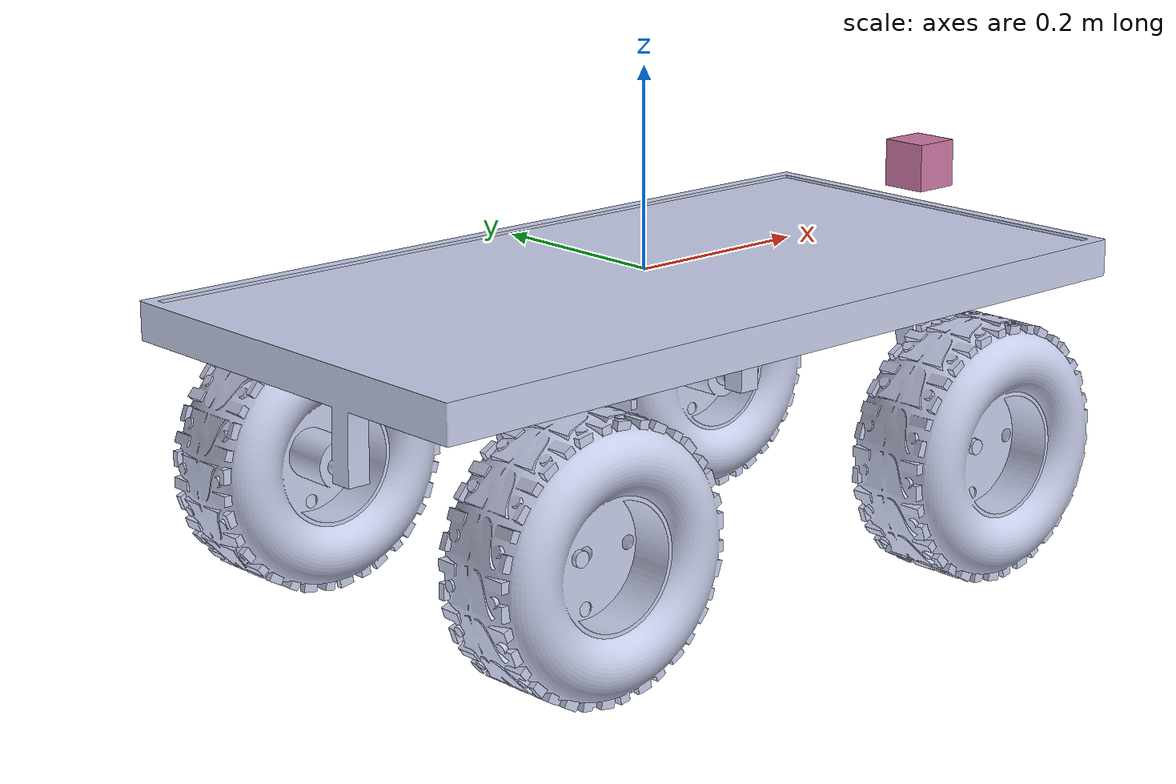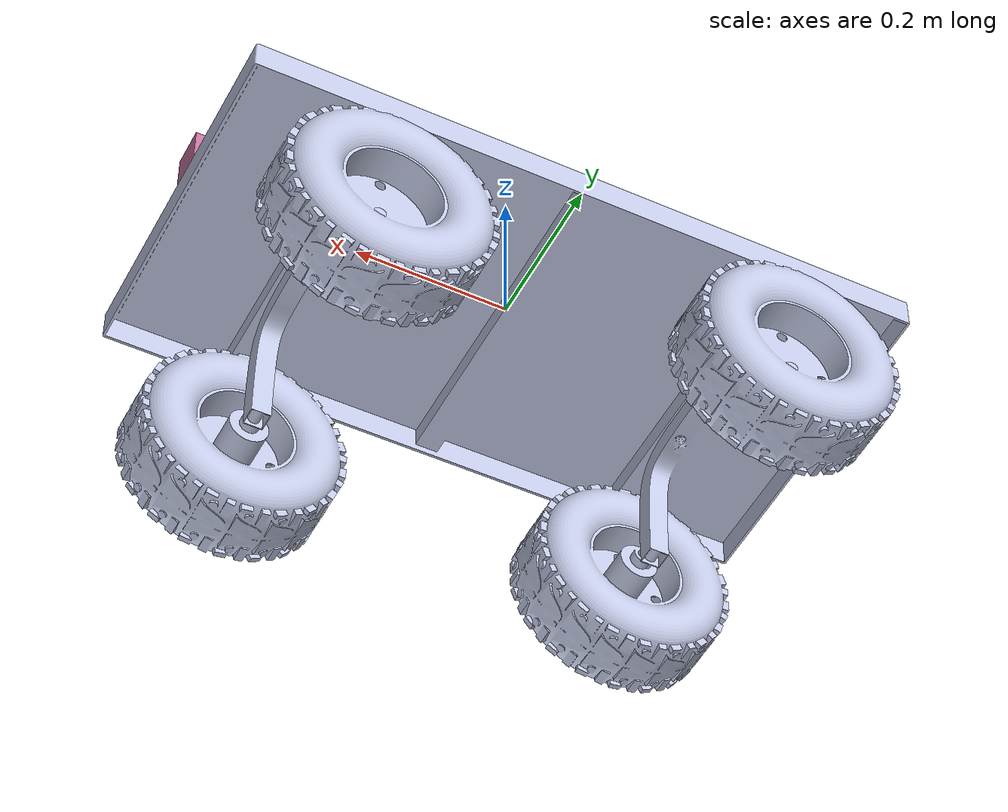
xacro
<?xml version="1.0"?>

<robot xmlns:xacro="http://ros.org/wiki/xacro" name="robot_base" >

<xacro:include filename="$(find robot_description)/urdf/robot_essentials.xacro" />
<xacro:include filename="$(find robot_description)/urdf/gazebo_essentials_base.xacro" />

<!-- setting up base link -->
  <link name="base_link">
    <inertial>
      <origin
        xyz="0 0 0"
        rpy="0 0 0" />
      <mass
        value="14.76" />
      <inertia
        ixx="0.3272"
        ixy="-4.785E-5"
        ixz="-0.02338"
        iyy="0.9316"
        iyz="-3.425E-5"
        izz="1.223" />
    </inertial>
    <visual>
      <origin xyz="0 0 0" rpy="0 0 0" />
      <geometry>
        <mesh filename="package://robot_description/meshes/base.stl" />
      </geometry>
      <material name="">
        <color rgba=".79216 0.81961 0.9333 1" />
      </material>
    </visual>
    <collision>
      <origin xyz="0 0 0" rpy="0 0 0" />
      <geometry>
        <mesh filename="package://robot_description/meshes/base.stl" />
      </geometry>
    </collision>
  </link>

<!-- defining front -->
<xacro:robot_front />

<!-- defining wheels -->
<xacro:robot_wheel prefix="front_left"/>
<xacro:robot_wheel prefix="front_right"/>
<xacro:robot_wheel prefix="rear_left"/>
<xacro:robot_wheel prefix="rear_right"/>

<!-- defining wheel joints -->
<xacro:front_wheel_joint prefix="front_left" rotate="0 0 1.57079632679" origin="0 .222 -.07"/>
<xacro:front_wheel_joint prefix="front_right" rotate="0 0 -1.57079632679" origin="0 -.22 -.07"/>
<xacro:wheel_joint prefix="rear_left" rotate="0 0 1.57079632679" origin="-.26 .222 -.18" axis="1 0 0"/>
<xacro:wheel_joint prefix="rear_right" rotate="0 0 -1.57079632679" origin="-.26 -.22 -.18" axis="-1 0 0"/>

<!-- defining front joint -->
<xacro:front_joint rotate="0 0 0" origin=".262 0 -0.12"/>

<!-- declaring wheel actuators -->
<xacro:base_transmission prefix="rear_left"/>
<xacro:base_transmission prefix="rear_right"/>

<!-- declaring front actuator -->
<xacro:front_transmission/>

<!-- wheel friction -->
<xacro:wheel_friction prefix="front_left"/>
<xacro:wheel_friction prefix="front_right"/>
<xacro:wheel_friction prefix="rear_left"/>
<xacro:wheel_friction prefix="rear_right"/>

<!-- camera joint -->
<xacro:camera_join/>
<xacro:camera/>
<xacro:camera_vision/>

</robot>

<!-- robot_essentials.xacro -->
<robot xmlns:xacro="http://ros.org/wiki/xacro" name="robot_essentials" >
<xacro:property name="camera_link" value="0.05" /> <!-- Size of square 'camera' box -->

<!-- defining wheels -->
<xacro:macro name="robot_wheel" params="prefix">
  <link name="${prefix}_wheel">
    <inertial>
      <origin
        xyz="0 0 0"
        rpy="0 0 0" />
      <mass
        value="13.17189718" />
      <inertia
        ixx="0.146268139"
        ixy="7.31599134E-7"
        ixz="-1.0973987E-7"
        iyy="0.0977028878"
        iyz="-3.65799567E-8"
        izz="0.0977022293" />
    </inertial>
    <visual>
      <origin xyz="0 0 0" rpy="0 0 0" />
      <geometry>
        <mesh filename="package://robot_description/meshes/wheel.stl" />
      </geometry>
      <material name="">
        <color rgba="0.79216 0.81961 0.9333 1" />
      </material>
    </visual>
    <collision>
      <origin
        xyz="0 0 0"
        rpy="0 0 0" />
      <geometry>
        <mesh filename="package://robot_description/meshes/wheel.stl" />
      </geometry>
    </collision>
  </link>
</xacro:macro>

<!-- defining front axle -->
<xacro:macro name="robot_front" >
  <link name="front_axle">
    <inertial>
      <origin
        xyz="0 0 0"
        rpy="0 0 0" />
      <mass
        value="0.732012" />
      <inertia
        ixx="0.01491"
        ixy="2.2876E-8"
        ixz="-1.34989E-7"
        iyy="0.003029"
        iyz="-1.375E-5"
        izz=".01197" />
    </inertial>
    <visual>
      <origin xyz="0 0 0" rpy="0 0 0" />
      <geometry>
        <mesh filename="package://robot_description/meshes/front.stl" />
      </geometry>
      <material name="">
        <color rgba="0.79216 0.81961 0.9333 1" />
      </material>
    </visual>
    <collision>
      <origin
        xyz="0 0 0"
        rpy="0 0 0" />
      <geometry>
        <mesh filename="package://robot_description/meshes/front.stl" />
      </geometry>
    </collision>
  </link>
</xacro:macro>

<!-- defining front joints connected to base -->
<xacro:macro name="front_joint" params="rotate origin">
  <joint name="front_axle_joint" type="continuous">
    <axis xyz="0 0 1"/>
    <parent link ="base_link"/>
    <child link ="front_axle"/>
    <origin rpy ="${rotate}" xyz="${origin}"/>
  </joint>
</xacro:macro>

<!-- defining wheel joints connected to base -->
<xacro:macro name="wheel_joint" params="prefix rotate origin axis">
  <joint name="${prefix}_wheel_joint" type="continuous">
    <axis xyz="${axis}"/>
    <parent link ="base_link"/>
    <child link ="${prefix}_wheel"/>
    <origin rpy ="${rotate}" xyz="${origin}"/>
  </joint>
</xacro:macro>

<!-- defining wheel joints connected to front axle -->
<xacro:macro name="front_wheel_joint" params="prefix rotate origin">
  <joint name="${prefix}_wheel_joint" type="continuous">
    <axis xyz="1 0 0"/>
    <parent link ="front_axle"/>
    <child link ="${prefix}_wheel"/>
    <origin rpy ="${rotate}" xyz="${origin}"/>
  </joint>
</xacro:macro>

<!-- defining transmitions -->
<xacro:macro name="base_transmission" params="prefix ">

<transmission name="${prefix}_wheel_trans" type="SimpleTransmission">
  <type>transmission_interface/SimpleTransmission</type>
  <actuator name="${prefix}_wheel_motor">
   <hardwareInterface>hardware_interface/VelocityJointInterface</hardwareInterface>
   <mechanicalReduction>1</mechanicalReduction>
  </actuator>
  <joint name="${prefix}_wheel_joint">
   <hardwareInterface>hardware_interface/VelocityJointInterface</hardwareInterface>
  </joint>
</transmission>

</xacro:macro>

<!-- defining front axle transmission -->
<xacro:macro name="front_transmission">

<transmission name="front_trans" type="SimpleTransmission">
  <type>transmission_interface/SimpleTransmission</type>
  <actuator name="front_motor">
    <hardwareInterface>hardware_interface/EffortJointInterface</hardwareInterface>
    <mechanicalReduction>1</mechanicalReduction>
  </actuator>
  <joint name="front_axle_joint">
    <hardwareInterface>hardware_interface/EffortJointInterface</hardwareInterface>
  </joint>
</transmission>
</xacro:macro>

<!-- define camera joint -->
<xacro:macro name="camera_join">
  <joint name="camera_joint" type="fixed">
    <axis xyz="0 1 0" />
    <origin xyz=".4 0 .05" rpy="0 0 0"/>
    <parent link="base_link"/>
    <child link="camera_link"/>
  </joint>
</xacro:macro>

<xacro:macro name="camera">
  <!-- Camera -->
  <link name="camera_link">
    <collision>
      <origin xyz="0 0 0" rpy="0 0 0"/>
      <geometry>
    <box size="${camera_link} ${camera_link} ${camera_link}"/>
      </geometry>
    </collision>

    <visual>
      <origin xyz="0 0 0" rpy="0 0 0"/>
      <geometry>
    <box size="${camera_link} ${camera_link} ${camera_link}"/>
      </geometry>
      <material name=""/>
    </visual>

    <inertial>
      <mass value="1e-5" />
      <origin xyz="0 0 0" rpy="0 0 0"/>
      <inertia ixx="1e-6" ixy="0" ixz="0" iyy="1e-6" iyz="0" izz="1e-6" />
    </inertial>
  </link>

</xacro:macro>

</robot>

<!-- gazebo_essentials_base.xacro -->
<robot xmlns:xacro="http://ros.org/wiki/xacro" name="gazebo_essentials" >

<!--############################# ROS-CONTROL #########################################-->
<gazebo>
    <plugin name="gazebo_ros_control" filename="libgazebo_ros_control.so">
      <robotNamespace>/</robotNamespace>
      <robotParam>/robot_description</robotParam>
      <controlPeriod>0.001</controlPeriod>
      <legacyModeNS>false</legacyModeNS>
    </plugin>
  </gazebo>
<!--################################ ROS-Controllers ######################################-->
<gazebo>
      <plugin name="diff_drive_controller" filename="libgazebo_ros_diff_drive.so">
        <legacyMode>false</legacyMode>
        <alwaysOn>true</alwaysOn>
        <updateRate>1000.0</updateRate>
        <leftJoint>rear_left_wheel_joint</leftJoint>
        <rightJoint>rear_right_wheel_joint</rightJoint>
        <wheelSeparation>0.451273</wheelSeparation>
        <wheelDiameter>0.26</wheelDiameter>
        <wheelTorque>10</wheelTorque>
        <publishTf>1</publishTf>
        <odometryFrame>map</odometryFrame>
        <commandTopic>cmd_vel</commandTopic>
        <odometryTopic>odom</odometryTopic>
        <robotBaseFrame>base_link</robotBaseFrame>
        <wheelAcceleration>2.8</wheelAcceleration>
        <publishWheelJointState>true</publishWheelJointState>
        <publishWheelTF>false</publishWheelTF>
        <odometrySource>world</odometrySource>
        <rosDebugLevel>Debug</rosDebugLevel>
      </plugin>
</gazebo>

<!-- front axle controller -->
<Gazebo>
  <plugin name="gazebo_ros_control" filename="libgazebo_ros_control.so">
    <robotParam>/robot_description</robotParam>
  </plugin>
</Gazebo>
<!--############################# Wheel friction #########################################-->
<xacro:macro name="wheel_friction" params="prefix ">

<gazebo reference="${prefix}_wheel">
 <mu1 value="1.0"/>
 <mu2 value="1.0"/>
 <kp value="10000000.0" />
 <kd value="1.0" />
 <fdir1 value="1 0 0"/>
</gazebo>

</xacro:macro>

<!--############################# Camera Vision #########################################-->
<xacro:macro name="camera_vision">
 <gazebo reference="camera_link">
    <sensor type="camera" name="camera1">
      <update_rate>30.0</update_rate>
      <camera name="head">
        <horizontal_fov>1.3962634</horizontal_fov>
        <image>
          <width>800</width>
          <height>800</height>
          <format>R8G8B8</format>
        </image>
        <clip>
          <near>0.02</near>
          <far>300</far>
        </clip>
        <noise>
          <type>gaussian</type>
          <!-- Noise is sampled independently per pixel on each frame.
               That pixel's noise value is added to each of its color
               channels, which at that point lie in the range [0,1]. -->
          <mean>0.0</mean>
          <stddev>0.007</stddev>
        </noise>
      </camera>
      <plugin name="camera_controller" filename="libgazebo_ros_camera.so">
        <alwaysOn>true</alwaysOn>
        <updateRate>0.0</updateRate>
        <cameraName>agbot/camera1</cameraName>
        <imageTopicName>image_raw</imageTopicName>
        <cameraInfoTopicName>camera_info</cameraInfoTopicName>
        <frameName>camera_link</frameName>
        <hackBaseline>0.07</hackBaseline>
        <distortionK1>0.0</distortionK1>
        <distortionK2>0.0</distortionK2>
        <distortionK3>0.0</distortionK3>
        <distortionT1>0.0</distortionT1>
        <distortionT2>0.0</distortionT2>
      </plugin>
    </sensor>
  </gazebo>
</xacro:macro>

</robot>
